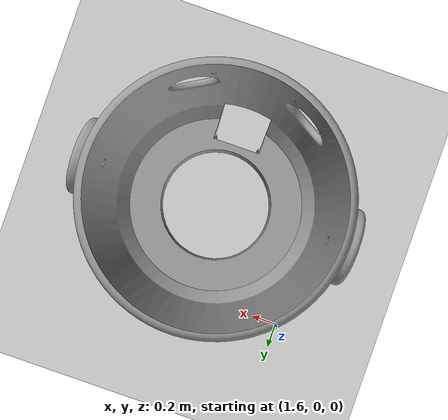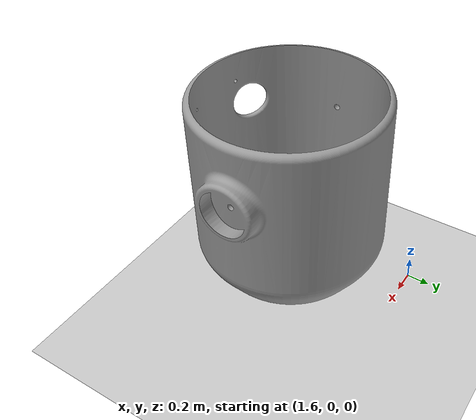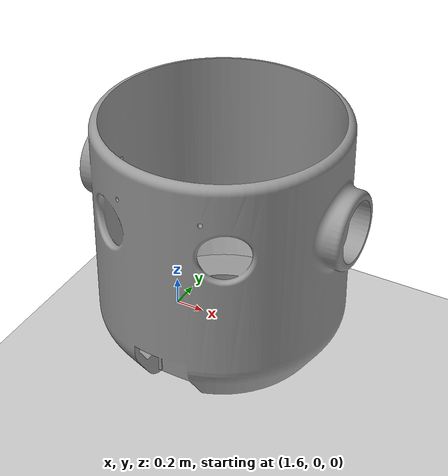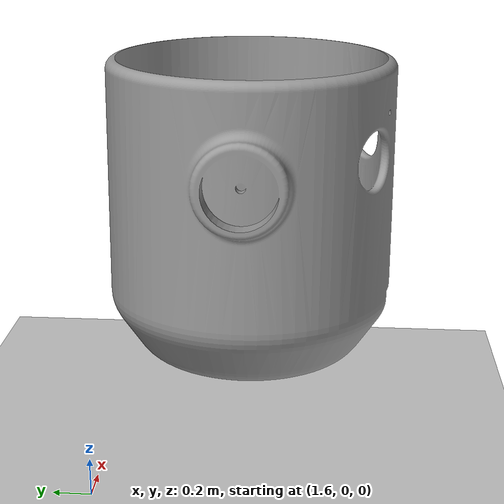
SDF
<sdf version="1.5">
 <world name="default">
  <light name="sun" type="directional">
   <pose>0 0 10 0 -0 0</pose>
   <diffuse>0.8 0.8 0.8 1</diffuse>
   <specular>0.2 0.2 0.2 1</specular>
   <attenuation>
    <range>1000</range>
    <constant>0.9</constant>
    <linear>0.01</linear>
    <quadratic>0.001</quadratic>
   </attenuation>
   <direction>-0.5 0.1 -0.9</direction>
  </light>
  <model name="ground_plane">
   <static>1</static>
   <link name="link">
    <collision name="collision">
     <geometry><plane><normal>0 0 1</normal><size>100 100</size></plane></geometry>
     <surface><friction><ode><mu>100</mu><mu2>50</mu2></ode></friction></surface>
    </collision>
    <visual name="visual">
     <cast_shadows>0</cast_shadows>
     <geometry><plane><normal>0 0 1</normal><size>100 100</size></plane></geometry>
     <material>
      <script><uri>file://media/materials/scripts/gazebo.material</uri><name>Gazebo/Grey</name></script>
     </material>
    </visual>
   </link>
  </model>
  <physics name="default_physics" default="0" type="ode">
   <max_step_size>0.001</max_step_size>
   <real_time_factor>1</real_time_factor>
   <real_time_update_rate>1000</real_time_update_rate>
   <gravity>0 0 -9.8</gravity>
   <magnetic_field>5.5645e-06 2.28758e-05 -4.23884e-05</magnetic_field>
  </physics>
  <scene><ambient>0.4 0.4 0.4 1</ambient><background>0.7 0.7 0.7 1</background><shadows>1</shadows></scene>
  <spherical_coordinates>
   <surface_model>EARTH_WGS84</surface_model>
   <latitude_deg>0</latitude_deg>
   <longitude_deg>0</longitude_deg>
   <elevation>0</elevation>
   <heading_deg>0</heading_deg>
  </spherical_coordinates>
  <model name="FACE">
   <pose>1.5371 -1.50745 0.5 0 -0 0</pose>
   <link name="defaultModel_0::custom_-27">
    <visual name="custom_-27_visual">
     <geometry>
      <mesh>
       <uri>/media/trannguyenphuongtrinh_eeit13/01D0512D26AB19B0/ROBOT/retry2/face/Face.STL</uri>
       <scale>0.01 0.01 0.01</scale>
      </mesh>
     </geometry>
     <material>
      <script><uri>file://media/materials/scripts/gazebo.material</uri><name>Gazebo/Grey</name></script>
     </material>
    </visual>
    <collision name="defaultModel_0::custom_-27_collision">
     <geometry>
      <mesh>
       <uri>/media/trannguyenphuongtrinh_eeit13/01D0512D26AB19B0/ROBOT/retry2/face/Face.STL</uri>
       <scale>0.01 0.01 0.01</scale>
      </mesh>
     </geometry>
    </collision>
   </link>
   <static>1</static>
  </model>
 </world>
</sdf>
